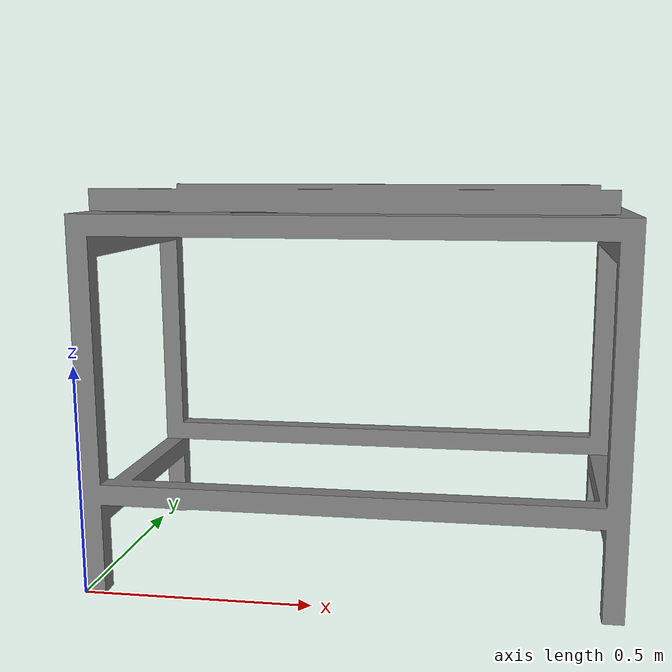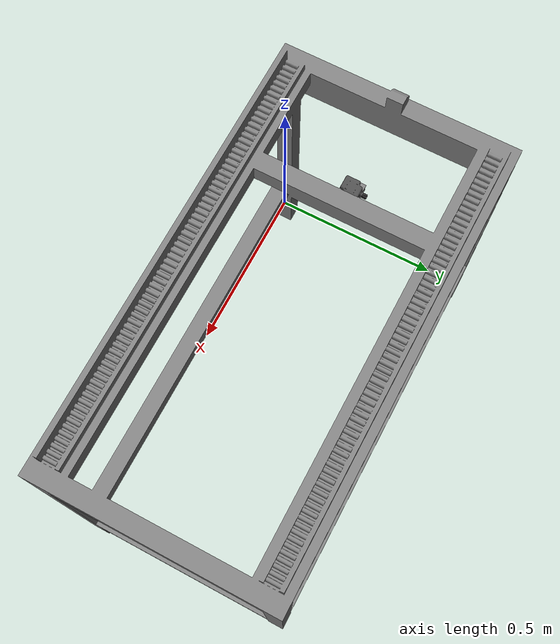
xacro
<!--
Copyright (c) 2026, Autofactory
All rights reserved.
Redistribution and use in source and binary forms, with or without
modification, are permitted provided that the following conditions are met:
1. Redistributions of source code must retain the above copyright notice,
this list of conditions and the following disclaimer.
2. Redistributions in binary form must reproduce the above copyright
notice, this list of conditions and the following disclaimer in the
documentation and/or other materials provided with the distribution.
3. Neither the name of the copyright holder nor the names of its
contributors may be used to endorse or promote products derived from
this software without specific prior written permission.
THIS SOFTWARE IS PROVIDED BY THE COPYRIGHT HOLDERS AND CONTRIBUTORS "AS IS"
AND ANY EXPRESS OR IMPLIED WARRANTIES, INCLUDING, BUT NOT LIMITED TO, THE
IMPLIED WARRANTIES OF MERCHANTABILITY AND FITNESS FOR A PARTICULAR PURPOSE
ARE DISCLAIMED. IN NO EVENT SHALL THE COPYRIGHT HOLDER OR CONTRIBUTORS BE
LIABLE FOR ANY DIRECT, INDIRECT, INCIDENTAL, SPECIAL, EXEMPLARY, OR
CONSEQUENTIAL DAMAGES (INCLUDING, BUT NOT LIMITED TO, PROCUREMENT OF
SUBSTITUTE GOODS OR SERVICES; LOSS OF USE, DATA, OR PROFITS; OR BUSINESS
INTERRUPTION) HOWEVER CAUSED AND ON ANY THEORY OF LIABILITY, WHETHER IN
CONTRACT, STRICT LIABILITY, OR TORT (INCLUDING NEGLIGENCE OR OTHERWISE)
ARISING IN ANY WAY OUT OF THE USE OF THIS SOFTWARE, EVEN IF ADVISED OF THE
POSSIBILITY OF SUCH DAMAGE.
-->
<?xml version="1.0"?>
<robot xmlns:xacro="http://wiki.ros.org/xacro" name="testbench">

  <xacro:arg name="simulated" default="true"/>

  <xacro:include filename="$(find product_carrier)/urdf/conveyor.urdf.xacro"/>
  <xacro:include filename="$(find rfid_scanner)/urdf/rfid_scanner.urdf.xacro"/>

  <!-- A joint to the 'world' link makes Gazebo fix the model to the world -->
  <link name="world"/>

  <xacro:conveyor
    parent="world"
    simulated="$(arg simulated)"
    mount_origin_xyz="0 0 0"
    mount_origin_rpy="0 0 0"
  />

  <xacro:rfid_scanner
    device_type="simatic_rf240r"
    device_name="simatic_rf240r"
    simulated="$(arg simulated)"
    parent="conveyor_origin"
    mount_origin_xyz="0.251 0.3 0.77"
    mount_origin_rpy="0 0 1.5708"
  />

</robot>

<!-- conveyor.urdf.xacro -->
<robot xmlns:xacro="http://wiki.ros.org/xacro" name="conveyor">

  <xacro:property name="conveyor_model_base" value="$(find product_carrier)/model/conveyor"/>

  <xacro:macro name="conveyor" params="
    parent
    simulated:=true
    mount_origin_xyz:='0 0 0'
    mount_origin_rpy:='0 0 0'
    conveyor_length:=0.6
    update_rate_hz:=10.0
    tf_prefix:=''">

    <!-- PLACEHOLDER values, to be replaced with measured ones -->
    <xacro:property name="origin_base_xyz" value="1.051 0.3 0.84"/>
    <xacro:property name="origin_base_rpy" value="0 0 0"/>
    <!-- presence lidar: outside the conveyor body, ray (+X of the sensor) up to +Z path -->
    <xacro:property name="presence_sensor_pose" value="0.1 0.08 0.816 0 ${-pi/2.0} 0"/>
    <xacro:property name="presence_sensor_range" value="0.05"/>
    <xacro:property name="carrier_effort" value="1000.0"/>
    <xacro:property name="carrier_velocity" value="0.5"/>
    <!-- carrier position controller gains, tuned for a light (~2 kg) welded product -->
    <xacro:property name="carrier_p_gain" value="100"/>
    <xacro:property name="carrier_d_gain" value="30"/>
    <xacro:property name="carrier_cmd_limit" value="200"/>

    <link name="${tf_prefix}conveyor_origin">
      <visual>
        <origin xyz="0 0 0" rpy="0 0 0"/>
        <geometry>
          <mesh filename="file://${conveyor_model_base}/meshes/visual.dae"/>
        </geometry>
        <material name="conveyor_grey">
          <color rgba="0.5 0.5 0.5 1"/>
        </material>
      </visual>
      <collision>
        <origin xyz="0 0 0" rpy="0 0 0"/>
        <geometry>
          <mesh filename="file://${conveyor_model_base}/meshes/collision.stl"/>
        </geometry>
      </collision>
      <!-- PLACEHOLDER inertial estimate -->
      <inertial>
        <origin xyz="0 0 0.4" rpy="0 0 0"/>
        <mass value="50.0"/>
        <inertia ixx="1.0" ixy="0" ixz="0" iyy="1.0" iyz="0" izz="1.0"/>
      </inertial>
    </link>

    <joint name="${tf_prefix}${parent}_conveyor_joint" type="fixed">
      <parent link="${tf_prefix}${parent}"/>
      <child link="${tf_prefix}conveyor_origin"/>
      <origin xyz="${mount_origin_xyz}" rpy="${mount_origin_rpy}"/>
    </joint>

    <link name="${tf_prefix}carrier_base"/>

    <joint name="${tf_prefix}origin_base_joint" type="fixed">
      <parent link="${tf_prefix}conveyor_origin"/>
      <child link="${tf_prefix}carrier_base"/>
      <origin xyz="${origin_base_xyz}" rpy="${origin_base_rpy}"/>
    </joint>

    <!-- Tiny inertial so the link is not dropped by sdformat on a non-fixed joint -->
    <link name="${tf_prefix}carrier">
      <inertial>
        <origin xyz="0 0 0" rpy="0 0 0"/>
        <mass value="0.001"/>
        <inertia ixx="1e-6" ixy="0" ixz="0" iyy="1e-6" iyz="0" izz="1e-6"/>
      </inertial>
    </link>

    <xacro:if value="${simulated}">
      <joint name="${tf_prefix}base_carrier_joint" type="prismatic">
        <parent link="${tf_prefix}carrier_base"/>
        <child link="${tf_prefix}carrier"/>
        <origin xyz="0 0 0" rpy="0 0 0"/>
        <axis xyz="1 0 0"/>
        <limit lower="${-conveyor_length}" upper="0.0" effort="${carrier_effort}" velocity="${carrier_velocity}"/>
      </joint>
    </xacro:if>
    <xacro:unless value="${simulated}">
      <joint name="${tf_prefix}base_carrier_joint" type="fixed">
        <parent link="${tf_prefix}carrier_base"/>
        <child link="${tf_prefix}carrier"/>
        <origin xyz="${-conveyor_length} 0 0" rpy="0 0 0"/>
      </joint>
    </xacro:unless>

    <xacro:if value="${simulated}">
      <!-- Single-ray presence sensor at the workplace slot; any return within range means a product is in place -->
      <gazebo reference="${tf_prefix}conveyor_origin">
        <sensor name="${tf_prefix}conveyor_presence_sensor" type="gpu_lidar">
          <pose>${presence_sensor_pose}</pose>
          <always_on>true</always_on>
          <update_rate>${update_rate_hz}</update_rate>
          <visualize>true</visualize>
          <topic>${tf_prefix}conveyor/presence_sensor</topic>
          <frame_id>${tf_prefix}conveyor_origin</frame_id>
          <lidar>
            <scan>
              <horizontal>
                <samples>1</samples>
                <resolution>1</resolution>
                <min_angle>0</min_angle>
                <max_angle>0</max_angle>
              </horizontal>
              <vertical>
                <samples>1</samples>
                <resolution>1</resolution>
                <min_angle>0</min_angle>
                <max_angle>0</max_angle>
              </vertical>
            </scan>
            <range>
              <min>0.001</min>
              <max>${presence_sensor_range}</max>
              <resolution>0.001</resolution>
            </range>
          </lidar>
        </sensor>
      </gazebo>

      <gazebo>
        <plugin filename="gz-sim-joint-state-publisher-system" name="gz::sim::systems::JointStatePublisher">
          <joint_name>${tf_prefix}base_carrier_joint</joint_name>
          <topic>${tf_prefix}conveyor/joint_state</topic>
        </plugin>
        <!-- Drives the carrier joint; keeps the default cmd_pos topic so the GUI plugin can command it -->
        <plugin filename="gz-sim-joint-position-controller-system" name="gz::sim::systems::JointPositionController">
          <joint_name>${tf_prefix}base_carrier_joint</joint_name>
          <p_gain>${carrier_p_gain}</p_gain>
          <i_gain>0</i_gain>
          <d_gain>${carrier_d_gain}</d_gain>
          <cmd_max>${carrier_cmd_limit}</cmd_max>
          <cmd_min>${-carrier_cmd_limit}</cmd_min>
        </plugin>
      </gazebo>
    </xacro:if>

  </xacro:macro>

</robot>

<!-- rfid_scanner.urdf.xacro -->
<robot xmlns:xacro="http://wiki.ros.org/xacro" name="rfid_scanner">

  <xacro:property name="rfid_scanner_model_base" value="$(find rfid_scanner)/model"/>

  <xacro:property name="rfid_scanner_specs" value="${dict(
      simatic_rf240r=dict(
        mesh_dir='simatic',
        mass=0.06,
        size_x=0.05, size_y=0.05, size_z=0.03,
        scanner_xyz='0 0 0.03', scanner_rpy='0 0 0',
        range=0.065,
        update_rate=10))}"/>
  <!-- PLACEHOLDER: simatic_rf240r mass/size are datasheet estimates (60 g, 50x50x30 mm);
       scanner_xyz/rpy (antenna face = top face) should be measured. -->

  <xacro:macro name="rfid_scanner" params="
    device_type:=simatic_rf240r
    device_name:=simatic_rf240r
    simulated:=true
    parent:=station
    tf_prefix:=''
    mount_origin_xyz:='0 0 0'
    mount_origin_rpy:='0 0 0'">

    <xacro:if value="${device_type not in rfid_scanner_specs}">
      ${xacro.error('rfid_scanner: unsupported device_type ' + str(device_type) + '; supported: ' + ', '.join(python.sorted(rfid_scanner_specs.keys())))}
    </xacro:if>

    <xacro:property name="spec" value="${rfid_scanner_specs[device_type]}"/>
    <xacro:property name="mesh_base" value="${rfid_scanner_model_base}/${spec['mesh_dir']}/meshes"/>
    <xacro:property name="m" value="${spec['mass']}"/>
    <xacro:property name="sx" value="${spec['size_x']}"/>
    <xacro:property name="sy" value="${spec['size_y']}"/>
    <xacro:property name="sz" value="${spec['size_z']}"/>

    <link name="${device_name}_device_origin">
      <visual>
        <origin xyz="0 0 0" rpy="0 0 0"/>
        <geometry>
          <mesh filename="file://${mesh_base}/visual.dae"/>
        </geometry>
        <material name="rfid_scanner_grey">
          <color rgba="0.3 0.3 0.3 1"/>
        </material>
      </visual>
      <collision>
        <origin xyz="0 0 0" rpy="0 0 0"/>
        <geometry>
          <mesh filename="file://${mesh_base}/collision.stl"/>
        </geometry>
      </collision>
      <!-- PLACEHOLDER: box inertia from the estimated mass and housing size. -->
      <inertial>
        <origin xyz="0 0 ${sz / 2.0}" rpy="0 0 0"/>
        <mass value="${m}"/>
        <inertia
          ixx="${m / 12.0 * (sy * sy + sz * sz)}" ixy="0" ixz="0"
          iyy="${m / 12.0 * (sx * sx + sz * sz)}" iyz="0"
          izz="${m / 12.0 * (sx * sx + sy * sy)}"/>
      </inertial>
    </link>

    <joint name="${device_name}_device_origin_joint" type="fixed">
      <parent link="${tf_prefix}${parent}"/>
      <child link="${device_name}_device_origin"/>
      <origin xyz="${mount_origin_xyz}" rpy="${mount_origin_rpy}"/>
    </joint>

    <xacro:if value="${simulated}">
      <link name="${device_name}_scanner_link">
        <inertial>
          <origin xyz="0 0 0" rpy="0 0 0"/>
          <mass value="1e-6"/>
          <inertia ixx="1e-9" ixy="0" ixz="0" iyy="1e-9" iyz="0" izz="1e-9"/>
        </inertial>
      </link>

      <joint name="${device_name}_scanner_joint" type="fixed">
        <parent link="${device_name}_device_origin"/>
        <child link="${device_name}_scanner_link"/>
        <origin xyz="${spec['scanner_xyz']}" rpy="${spec['scanner_rpy']}"/>
      </joint>

      <gazebo reference="${device_name}_scanner_joint">
        <preserveFixedJoint>true</preserveFixedJoint>
      </gazebo>

      <gazebo>
        <plugin filename="rfid_sim_systems" name="autofactory::rfid::RfidReader">
          <link>${device_name}_scanner_link</link>
          <range>${spec['range']}</range>
          <update_rate>${spec['update_rate']}</update_rate>
          <detected_topic>/${device_name}/detected</detected_topic>
          <content_topic>/${device_name}/tag_data</content_topic>
          <write_service>/${device_name}/write_tag</write_service>
          <reader_id>${device_name}</reader_id>
        </plugin>
      </gazebo>
    </xacro:if>

  </xacro:macro>

</robot>
